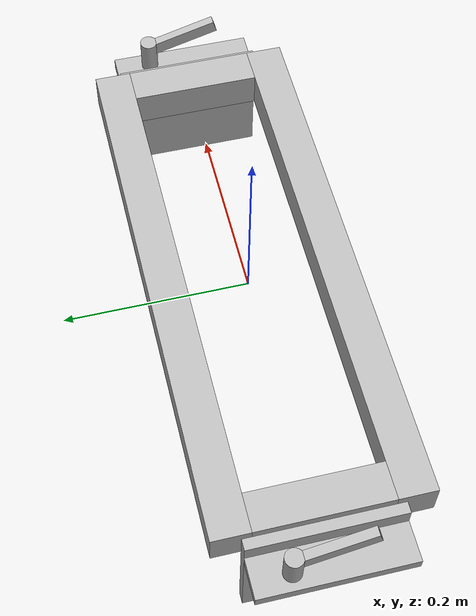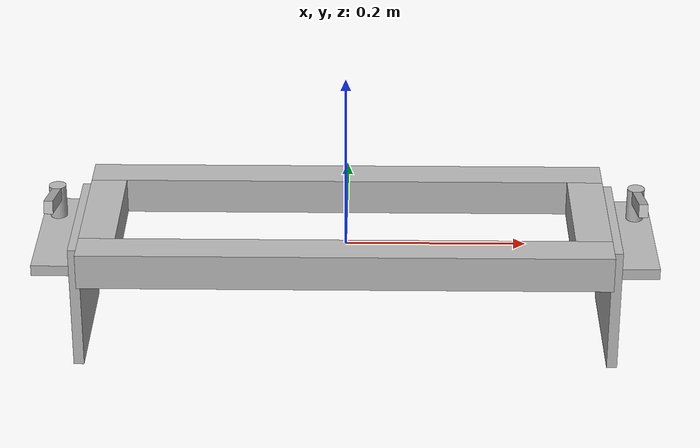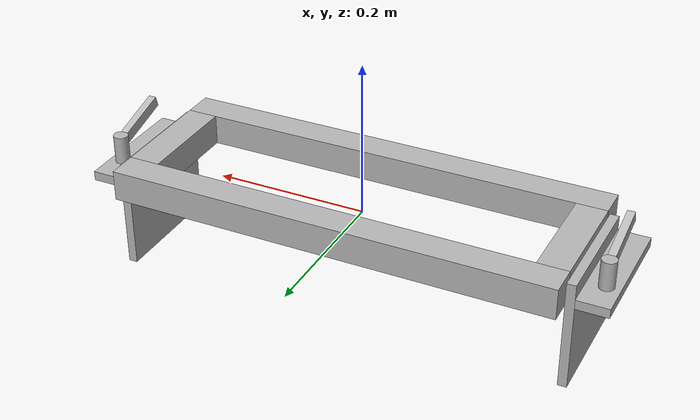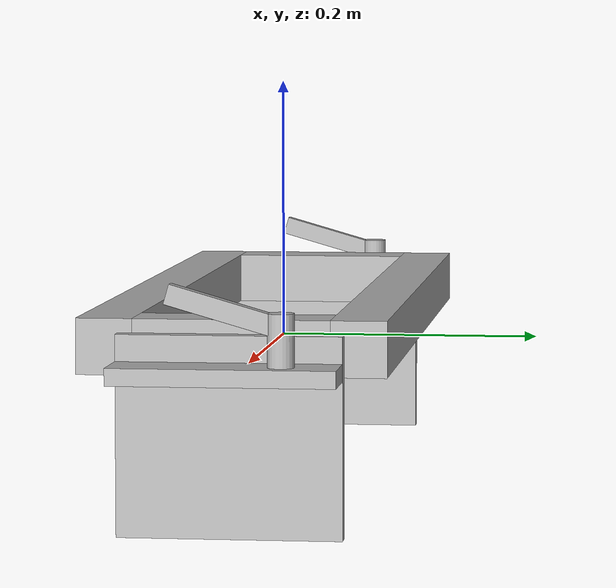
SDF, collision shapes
<?xml version="1.0"?>
<sdf version="1.7" xmlns:drake="drake.mit.edu">
  <model name="station_arm_cart_gantry">
    <link name="station_arm_cart_gantry">
      <pose>0 0 0 0 0 0</pose>
      <inertial>
        <!-- These are just placeholder inertial values, since this body is
        fixed to the world-->
        <pose>5.43e-05 -0.0196 0.0505 0 0 0</pose>
        <mass>0.136</mass>
        <inertia>
          <ixx> 0.000109</ixx>
          <ixy>-0.000000</ixy>
          <ixz> 0.000000</ixz>
          <iyy> 0.000128</iyy>
          <iyz>-0.000000</iyz>
          <izz> 0.000054</izz>
        </inertia>
      </inertial>
      <visual name="station_arm_cart_gantry">
        <pose>0 0 0 0 0 0</pose>
        <geometry>
          <mesh>
            <uri>/data/kylehatch/lbm_eval/lbm_eval_models/stations/franka_station/assets/station_arm_cart_gantry.gltf</uri>
            <scale>1.0 1.0 1.0</scale>
          </mesh>
        </geometry>
      </visual>
      <collision name="arm_cart_gantry_back_horizontal_plate_collision_box">
        <pose>0.32198 0.0 0.00616 0.0 -0.0 0.0</pose>
        <geometry>
          <box>
            <size>0.041 0.16 0.01232</size>
          </box>
        </geometry>
      </collision>
      <collision name="arm_cart_gantry_back_knob_collision_box">
        <pose>0.32506 -0.00053 0.05152 -0.28116 0.0 -0.0</pose>
        <geometry>
          <box>
            <size>0.01 0.07975 0.01445</size>
          </box>
        </geometry>
      </collision>
      <collision name="arm_cart_gantry_back_knob_collision_cylinder">
        <pose>0.32506 0.04 0.03105 0.0 -0.0 0.0</pose>
        <geometry>
          <cylinder>
            <radius>0.00962</radius>
            <length>0.03747</length>
          </cylinder>
        </geometry>
      </collision>
      <collision name="arm_cart_gantry_back_rail_collision_box">
        <pose>0.27 0.0 0.02132 0.0 -0.0 0.0</pose>
        <geometry>
          <box>
            <size>0.04 0.14 0.04</size>
          </box>
        </geometry>
      </collision>
      <collision name="arm_cart_gantry_back_vertical_plate_collision_box">
        <pose>0.29574 0.0 -0.04033 0.0 -0.0 0.0</pose>
        <geometry>
          <box>
            <size>0.01148 0.16 0.14331</size>
          </box>
        </geometry>
      </collision>
      <collision name="arm_cart_gantry_front_horizontal_plate_collision_box">
        <pose>-0.32198 0.0 0.00616 0.0 -0.0 0.0</pose>
        <geometry>
          <box>
            <size>0.041 0.16 0.01232</size>
          </box>
        </geometry>
      </collision>
      <collision name="arm_cart_gantry_front_knob_collision_box">
        <pose>-0.32506 -0.00053 0.05152 -0.28116 0.0 -0.0</pose>
        <geometry>
          <box>
            <size>0.01 0.07975 0.01445</size>
          </box>
        </geometry>
      </collision>
      <collision name="arm_cart_gantry_front_knob_collision_cylinder">
        <pose>-0.32506 0.04 0.03105 0.0 -0.0 0.0</pose>
        <geometry>
          <cylinder>
            <radius>0.00962</radius>
            <length>0.03747</length>
          </cylinder>
        </geometry>
      </collision>
      <collision name="arm_cart_gantry_front_rail_collision_box">
        <pose>-0.27 0.0 0.02132 0.0 -0.0 0.0</pose>
        <geometry>
          <box>
            <size>0.04 0.14 0.04</size>
          </box>
        </geometry>
      </collision>
      <collision name="arm_cart_gantry_front_vertical_plate_collision_box">
        <pose>-0.29574 0.0 -0.04033 0.0 -0.0 0.0</pose>
        <geometry>
          <box>
            <size>0.01148 0.16 0.14331</size>
          </box>
        </geometry>
      </collision>
      <collision name="arm_cart_gantry_left_rail_collision_box">
        <pose>0.0 0.09 0.02132 0.0 -0.0 0.0</pose>
        <geometry>
          <box>
            <size>0.58 0.04 0.04</size>
          </box>
        </geometry>
      </collision>
      <collision name="arm_cart_gantry_right_rail_collision_box">
        <pose>0.0 -0.09 0.02132 0.0 -0.0 0.0</pose>
        <geometry>
          <box>
            <size>0.58 0.04 0.04</size>
          </box>
        </geometry>
      </collision>
    </link>
    <frame name="origin">
      <pose>0 0 0 0 0 0</pose>
    </frame>
  </model>
</sdf>
